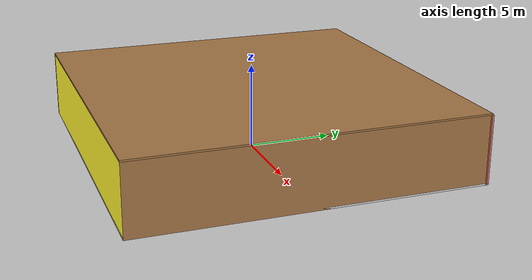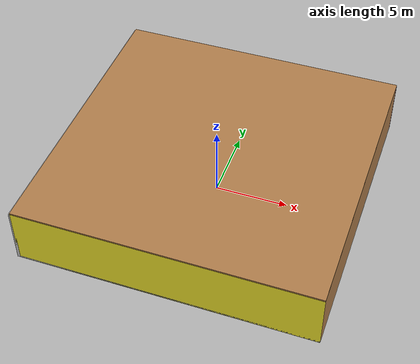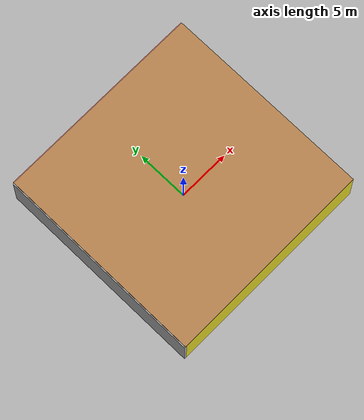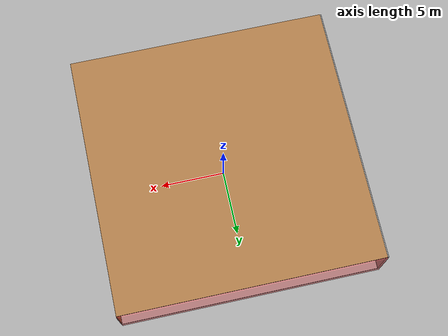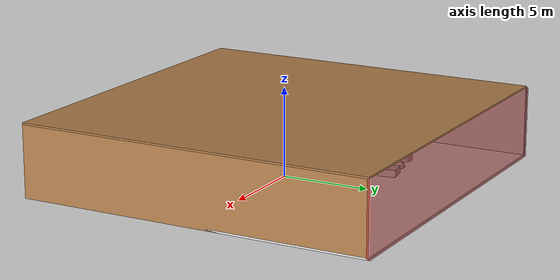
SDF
<sdf version="1.4">
 <world name="default">
  <physics type="ode">
   <max_step_size>0.001</max_step_size>
   <real_time_factor>1</real_time_factor>
   <real_time_update_rate>1000</real_time_update_rate>
   <gravity>0 0 -9.8</gravity>
  </physics>
  <scene><ambient>0.4 0.4 0.4 1</ambient><background>0.7 0.7 0.7 1</background><shadows>1</shadows></scene>
  <model name="Surrounding">
   <static>1</static>
   <link name="Ceiling">
    <collision name="Ceiling_Collision"><geometry><box><size>20 20 0.1</size></box></geometry></collision>
    <visual name="Ceiling_Visual">
     <geometry><box><size>20 20 0.1</size></box></geometry>
     <material>
      <script><uri>file://media/materials/scripts/gazebo.material</uri><name>Gazebo/WoodFloor</name></script>
     </material>
    </visual>
    <pose>0 0 4.05 0 0 0</pose>
   </link>
   <link name="Wall_South">
    <collision name="Wall_South_Collision">
     <geometry><box><size>20 0 4</size></box></geometry>
     <pose>0 0 2 0 -0 0</pose>
    </collision>
    <visual name="Wall_South_Visual">
     <pose>0 0 2 0 -0 0</pose>
     <geometry><box><size>20 0 4</size></box></geometry>
     <material>
      <script><uri>file://media/materials/scripts/gazebo.material</uri><name>Gazebo/Yellow</name></script>
     </material>
    </visual>
    <velocity_decay><linear>0</linear><angular>0</angular></velocity_decay>
    <pose>0 -10 0 0 -0 0</pose>
   </link>
   <link name="Wall_East">
    <collision name="Wall_21_Collision">
     <geometry><box><size>20 0 4</size></box></geometry>
     <pose>0 0 2 0 -0 0</pose>
    </collision>
    <visual name="Wall_21_Visual">
     <pose>0 0 2 0 -0 0</pose>
     <geometry><box><size>20 0 4</size></box></geometry>
     <material>
      <script><uri>file://media/materials/scripts/gazebo.material</uri><name>Gazebo/Wood</name></script>
     </material>
    </visual>
    <velocity_decay><linear>0</linear><angular>0</angular></velocity_decay>
    <pose>10 0 0 0 -0 1.5708</pose>
   </link>
   <link name="Wall_North">
    <collision name="Wall_22_Collision">
     <geometry><box><size>20 0.2 4</size></box></geometry>
     <pose>0 0 2 0 -0 0</pose>
    </collision>
    <visual name="Wall_22_Visual">
     <pose>0 0 2 0 -0 0</pose>
     <geometry><box><size>20 0.2 4</size></box></geometry>
     <material>
      <script><uri>file://media/materials/scripts/gazebo.material</uri><name>Gazebo/RedTransparent</name></script>
     </material>
    </visual>
    <velocity_decay><linear>0</linear><angular>0</angular></velocity_decay>
    <pose>0 10 0 0 -0 0</pose>
   </link>
   <link name="Wall_West">
    <collision name="Wall_23_Collision">
     <geometry><box><size>20 0.2 4</size></box></geometry>
     <pose>0 0 2 0 -0 0</pose>
    </collision>
    <visual name="Wall_23_Visual">
     <pose>0 0 2 0 -0 0</pose>
     <geometry><box><size>20 0.2 4</size></box></geometry>
     <material>
      <script><uri>file://media/materials/scripts/gazebo.material</uri><name>Gazebo/CloudySky</name></script>
     </material>
    </visual>
    <velocity_decay><linear>0</linear><angular>0</angular></velocity_decay>
    <pose>-10 0 0 0 0 -1.5708</pose>
   </link>
   <link name="Ground_link">
    <collision name="collision">
     <pose>0 0 .05 0 -0 0</pose>
     <geometry><box><size>20 20 0.1</size></box></geometry>
    </collision>
    <visual name="visual">
     <pose>0 0 .05 0 -0 0</pose>
     <geometry><box><size>20 20 0.1</size></box></geometry>
     <material>
      <script><uri>file://media/materials/scripts/gazebo.material</uri><name>Gazebo/White</name></script>
     </material>
    </visual>
   </link>
   <static>1</static>
  </model>
  <spherical_coordinates>
   <surface_model>EARTH_WGS84</surface_model>
   <latitude_deg>0</latitude_deg>
   <longitude_deg>0</longitude_deg>
   <elevation>0</elevation>
   <heading_deg>0</heading_deg>
  </spherical_coordinates>
  <light name="lightball_0" type="diffuse">
   <diffuse>0.8 0.8 0.8 1</diffuse>
   <specular>0.2 0.2 0.2 1</specular>
   <attenuation>
    <range>100</range>
    <constant>0.7</constant>
    <linear>0.01</linear>
    <quadratic>0.001</quadratic>
   </attenuation>
   <direction>-0.5 0.1 -0.9</direction>
   <pose>2.46309758658 2.43146193428 0.762642692834 0 0 0</pose>
  </light>
  <light name="lightball_1" type="diffuse">
   <diffuse>0.8 0.8 0.8 1</diffuse>
   <specular>0.2 0.2 0.2 1</specular>
   <attenuation>
    <range>100</range>
    <constant>0.7</constant>
    <linear>0.01</linear>
    <quadratic>0.001</quadratic>
   </attenuation>
   <direction>-0.5 0.1 -0.9</direction>
   <pose>-2.12339202029 7.17710336178 2.88404827961 0 0 0</pose>
  </light>
  <light name="lightball_2" type="diffuse">
   <diffuse>0.8 0.8 0.8 1</diffuse>
   <specular>0.2 0.2 0.2 1</specular>
   <attenuation>
    <range>100</range>
    <constant>0.7</constant>
    <linear>0.01</linear>
    <quadratic>0.001</quadratic>
   </attenuation>
   <direction>-0.5 0.1 -0.9</direction>
   <pose>8.30786198302 -7.45354838138 1.51583869218 0 0 0</pose>
  </light>
  <light name="lightball_3" type="diffuse">
   <diffuse>0.8 0.8 0.8 1</diffuse>
   <specular>0.2 0.2 0.2 1</specular>
   <attenuation>
    <range>100</range>
    <constant>0.7</constant>
    <linear>0.01</linear>
    <quadratic>0.001</quadratic>
   </attenuation>
   <direction>-0.5 0.1 -0.9</direction>
   <pose>-8.30625624698 -4.25897713934 0.808662537813 0 0 0</pose>
  </light>
  <light name="lightball_4" type="diffuse">
   <diffuse>0.8 0.8 0.8 1</diffuse>
   <specular>0.2 0.2 0.2 1</specular>
   <attenuation>
    <range>100</range>
    <constant>0.7</constant>
    <linear>0.01</linear>
    <quadratic>0.001</quadratic>
   </attenuation>
   <direction>-0.5 0.1 -0.9</direction>
   <pose>-3.95560047528 -0.171806319231 1.89953419769 0 0 0</pose>
  </light>
  <light name="lightball_5" type="diffuse">
   <diffuse>0.8 0.8 0.8 1</diffuse>
   <specular>0.2 0.2 0.2 1</specular>
   <attenuation>
    <range>100</range>
    <constant>0.7</constant>
    <linear>0.01</linear>
    <quadratic>0.001</quadratic>
   </attenuation>
   <direction>-0.5 0.1 -0.9</direction>
   <pose>5.51357619503 -6.59407340772 0.500741534392 0 0 0</pose>
  </light>
  <light name="lightball_6" type="diffuse">
   <diffuse>0.8 0.8 0.8 1</diffuse>
   <specular>0.2 0.2 0.2 1</specular>
   <attenuation>
    <range>100</range>
    <constant>0.7</constant>
    <linear>0.01</linear>
    <quadratic>0.001</quadratic>
   </attenuation>
   <direction>-0.5 0.1 -0.9</direction>
   <pose>5.40993229559 4.83387642714 1.88099149599 0 0 0</pose>
  </light>
  <light name="lightball_7" type="diffuse">
   <diffuse>0.8 0.8 0.8 1</diffuse>
   <specular>0.2 0.2 0.2 1</specular>
   <attenuation>
    <range>100</range>
    <constant>0.7</constant>
    <linear>0.01</linear>
    <quadratic>0.001</quadratic>
   </attenuation>
   <direction>-0.5 0.1 -0.9</direction>
   <pose>1.13688771058 -8.74587751553 2.84709034712 0 0 0</pose>
  </light>
  <light name="lightball_8" type="diffuse">
   <diffuse>0.8 0.8 0.8 1</diffuse>
   <specular>0.2 0.2 0.2 1</specular>
   <attenuation>
    <range>100</range>
    <constant>0.7</constant>
    <linear>0.01</linear>
    <quadratic>0.001</quadratic>
   </attenuation>
   <direction>-0.5 0.1 -0.9</direction>
   <pose>-8.23102574511 -5.19416793638 0.560306198384 0 0 0</pose>
  </light>
  <light name="lightball_9" type="diffuse">
   <diffuse>0.8 0.8 0.8 1</diffuse>
   <specular>0.2 0.2 0.2 1</specular>
   <attenuation>
    <range>100</range>
    <constant>0.7</constant>
    <linear>0.01</linear>
    <quadratic>0.001</quadratic>
   </attenuation>
   <direction>-0.5 0.1 -0.9</direction>
   <pose>-7.34480874841 4.54384392789 0.510016150924 0 0 0</pose>
  </light>
  <include><uri>model://cabinet</uri><pose>-6.6548742994 1.4880352133 0 0 0 2.80678379493</pose></include>
  <include>
   <uri>model://textured_shapes</uri>
   <pose>-4.28691152175 4.70091989228 0 0 0 1.74421886432</pose>
  </include>
  <include>
   <uri>model://construction_cone</uri>
   <pose>-0.924220491701 -3.99098565751 0 0 0 0.213520719458</pose>
  </include>
  <include>
   <uri>model://robocup_3Dsim_goal</uri>
   <pose>2.59810051412 -1.14968006734 0 0 0 2.97691462985</pose>
  </include>
 </world>
</sdf>

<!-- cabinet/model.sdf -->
<sdf version="1.5">
  <model name="cabinet">
    <static>true</static>
    <link name="cabinet_bottom_plate">
      <inertial>
        <pose>0 0 -1 0 0 0</pose>
        <inertia>
          <ixx>2.050000</ixx>
          <ixy>0</ixy>
          <ixz>0</ixz>
          <iyy>2.050000</iyy>
          <iyz>0</iyz>
          <izz>2.050000</izz>
        </inertia>
        <mass>25.000000</mass>
      </inertial>
      <collision name="cabinet_bottom_plate_geom">
        <pose>0 0 0.010000 0 0 0</pose>
        <geometry>
          <box>
            <size>0.450000 0.450000 0.020000</size>
          </box>
        </geometry>
      </collision>
      <visual name="cabinet_bottom_plate_geom_visual">
        <pose>0 0 0.010000 0 0 0</pose>
        <geometry>
          <box>
            <size>0.450000 0.450000 0.020000</size>
          </box>
        </geometry>
        <material>
          <script>
            <uri>model://media/materials/scripts/gazebo.material</uri>
            <name>Gazebo/Wood</name>
          </script>
        </material>
      </visual>
      <collision name="cabinet_bottom_plate_geom_cabinet_back_plate">
        <pose>0.235000 0 0.510000 0 0 0</pose>
        <geometry>
          <box>
            <size>0.020000 0.450000 1.020000</size>
          </box>
        </geometry>
      </collision>
      <visual name="cabinet_bottom_plate_geom_cabinet_back_plate_visual">
        <pose>0.235000 0 0.510000 0 0 0</pose>
        <geometry>
          <box>
            <size>0.020000 0.450000 1.020000</size>
          </box>
        </geometry>
        <material>
          <script>
            <uri>model://media/materials/scripts/gazebo.material</uri>
            <name>Gazebo/Wood</name>
          </script>
        </material>
      </visual>
      <collision name="cabinet_bottom_plate_geom_cabinet_left_plate">
        <pose>0 0.235000 0.510000 0 0 0</pose>
        <geometry>
          <box>
            <size>0.450000 0.020000 1.020000</size>
          </box>
        </geometry>
      </collision>
      <visual name="cabinet_bottom_plate_geom_cabinet_left_plate_visual">
        <pose>0 0.235000 0.510000 0 0 0</pose>
        <geometry>
          <box>
            <size>0.450000 0.020000 1.020000</size>
          </box>
        </geometry>
        <material>
          <script>
            <uri>model://media/materials/scripts/gazebo.material</uri>
            <name>Gazebo/Wood</name>
          </script>
        </material>
      </visual>
      <collision name="cabinet_bottom_plate_geom_cabinet_middle_plate">
        <pose>0 0 0.510000 0 0 0</pose>
        <geometry>
          <box>
            <size>0.450000 0.450000 0.020000</size>
          </box>
        </geometry>
      </collision>
      <visual name="cabinet_bottom_plate_geom_cabinet_middle_plate_visual">
        <pose>0 0 0.510000 0 0 0</pose>
        <geometry>
          <box>
            <size>0.450000 0.450000 0.020000</size>
          </box>
        </geometry>
        <material>
          <script>
            <uri>model://media/materials/scripts/gazebo.material</uri>
            <name>Gazebo/Wood</name>
          </script>
        </material>
      </visual>
      <collision name="cabinet_bottom_plate_geom_cabinet_right_plate">
        <pose>0 -0.235000 0.510000 0 0 0</pose>
        <geometry>
          <box>
            <size>0.450000 0.020000 1.020000</size>
          </box>
        </geometry>
      </collision>
      <visual name="cabinet_bottom_plate_geom_cabinet_right_plate_visual">
        <pose>0 -0.235000 0.510000 0 0 0</pose>
        <geometry>
          <box>
            <size>0.450000 0.020000 1.020000</size>
          </box>
        </geometry>
        <material>
          <script>
            <uri>model://media/materials/scripts/gazebo.material</uri>
            <name>Gazebo/Wood</name>
          </script>
        </material>
      </visual>
      <collision name="cabinet_bottom_plate_geom_cabinet_top_plate">
        <pose>0 0 1.010000 0 0 0</pose>
        <geometry>
          <box>
            <size>0.450000 0.450000 0.020000</size>
          </box>
        </geometry>
      </collision>
      <visual name="cabinet_bottom_plate_geom_cabinet_top_plate_visual">
        <pose>0 0 1.010000 0 0 0</pose>
        <geometry>
          <box>
            <size>0.450000 0.450000 0.020000</size>
          </box>
        </geometry>
        <material>
          <script>
            <uri>model://media/materials/scripts/gazebo.material</uri>
            <name>Gazebo/Wood</name>
          </script>
        </material>
      </visual>
    </link>
  </model>
</sdf>

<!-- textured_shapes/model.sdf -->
<sdf version="1.6">
  <model name="textured_shapes">
    <pose>0 0 0.5 0 0 0</pose>
    <link name="box">
      <pose>0 -1.5 0 0 0 0</pose>
      <collision name="collision">
        <geometry>
          <box>
            <size>1 1 1</size>
          </box>
        </geometry>
      </collision>
      <visual name="visual">
        <geometry>
          <box>
            <size>1 1 1</size>
          </box>
        </geometry>
        <material>
          <script>
            <uri>model://../model_source/models/textured_shapes/materials/scripts</uri>
            <uri>model://../model_source/models/textured_shapes/materials/textures</uri>
            <name>TexturedShape/Squares</name>
          </script>
        </material>
      </visual>
    </link>
    <link name="sphere">
      <collision name="collision">
        <geometry>
          <sphere>
            <radius>0.5</radius>
          </sphere>
        </geometry>
      </collision>
      <visual name="visual">
        <geometry>
          <sphere>
            <radius>0.5</radius>
          </sphere>
        </geometry>
        <material>
          <script>
            <uri>model://../model_source/models/textured_shapes/materials/scripts</uri>
            <uri>model://../model_source/models/textured_shapes/materials/textures</uri>
            <name>TexturedShape/Squares</name>
          </script>
        </material>
      </visual>
    </link>
    <link name="cylinder">
      <pose>0 1.5 0 0 0 0</pose>
      <collision name="collision">
        <geometry>
          <cylinder>
            <radius>0.5</radius>
            <length>1</length>
          </cylinder>
        </geometry>
      </collision>
      <visual name="visual">
        <geometry>
          <cylinder>
            <radius>0.5</radius>
            <length>1</length>
          </cylinder>
        </geometry>
        <material>
          <script>
            <uri>model://../model_source/models/textured_shapes/materials/scripts</uri>
            <uri>model://../model_source/models/textured_shapes/materials/textures</uri>
            <name>TexturedShape/Squares</name>
          </script>
        </material>
      </visual>
    </link>
  </model>
</sdf>

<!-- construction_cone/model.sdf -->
<sdf version="1.5">
  <model name="Construction Cone">
    <link name="link">
      <collision name="collision">
        <geometry>
          <mesh>
            <scale>10 10 10</scale>
            <uri>file://isr-testbed/construction_cone/meshes/construction_cone.dae</uri>
          </mesh>
        </geometry>
      </collision>
      <visual name="visual">
        <geometry>
          <mesh>
            <scale>10 10 10</scale>
            <uri>file://isr-testbed/construction_cone/meshes/construction_cone.dae</uri>
          </mesh>
        </geometry>
      </visual>
    </link>
  </model>
</sdf>

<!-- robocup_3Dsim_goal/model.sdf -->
<sdf version="1.5">
  <model name="robocup_3d_goal">
    <static>true</static>
    <link name="left_post">
      <pose>0 1.05 0.45 0 0 0</pose>
      <collision name="collision">
        <geometry>
          <cylinder>
            <radius>0.05</radius>
            <length>0.9</length>
          </cylinder>
        </geometry>
      </collision>
      <visual name="visual">
        <geometry>
          <cylinder>
            <radius>0.05</radius>
            <length>0.9</length>
          </cylinder>
        </geometry>
        <material>
          <script>
            <uri>file://media/materials/scripts/gazebo.material</uri>
            <name>Gazebo/ZincYellow</name>
          </script>
        </material>
      </visual>
    </link>
    <link name="left_support_horiz_lower">
      <pose>0.30 1.05 0.01 0 0 0</pose>
      <collision name="collision">
        <geometry>
          <box>
            <size>0.50 0.02 0.02</size>
          </box>
        </geometry>
      </collision>
      <visual name="visual">
        <geometry>
          <box>
            <size>0.50 0.02 0.02</size>
          </box>
        </geometry>
        <material>
          <script>
            <uri>file://media/materials/scripts/gazebo.material</uri>
            <name>Gazebo/White</name>
          </script>
        </material>
      </visual>
    </link>
    <link name="left_support_horiz_upper">
      <pose>0.30 1.05 0.79 0 0 0</pose>
      <collision name="collision">
        <geometry>
          <box>
            <size>0.50 0.02 0.02</size>
          </box>
        </geometry>
      </collision>
      <visual name="visual">
        <geometry>
          <box>
            <size>0.50 0.02 0.02</size>
          </box>
        </geometry>
        <material>
          <script>
            <uri>file://media/materials/scripts/gazebo.material</uri>
            <name>Gazebo/White</name>
          </script>
        </material>
      </visual>
    </link>
    <link name="left_support_vertical">
      <pose>0.56 1.05 0.4 0 1.5708 0</pose>
      <collision name="collision">
        <geometry>
          <box>
            <size>0.80 0.02 0.02</size>
          </box>
        </geometry>
      </collision>
      <visual name="visual">
        <geometry>
          <box>
            <size>0.80 0.02 0.02</size>
          </box>
        </geometry>
        <material>
          <script>
            <uri>file://media/materials/scripts/gazebo.material</uri>
            <name>Gazebo/White</name>
          </script>
        </material>
      </visual>
    </link>
    <link name="right_support_horiz_lower">
      <pose>0.30 -1.05 0.01 0 0 0</pose>
      <collision name="collision">
        <geometry>
          <box>
            <size>0.50 0.02 0.02</size>
          </box>
        </geometry>
      </collision>
      <visual name="visual">
        <geometry>
          <box>
            <size>0.50 0.02 0.02</size>
          </box>
        </geometry>
        <material>
          <script>
            <uri>file://media/materials/scripts/gazebo.material</uri>
            <name>Gazebo/White</name>
          </script>
        </material>
      </visual>
    </link>
    <link name="right_support_horiz_upper">
      <pose>0.30 -1.05 0.79 0 0 0</pose>
      <collision name="collision">
        <geometry>
          <box>
            <size>0.50 0.02 0.02</size>
          </box>
        </geometry>
      </collision>
      <visual name="visual">
        <geometry>
          <box>
            <size>0.50 0.02 0.02</size>
          </box>
        </geometry>
        <material>
          <script>
            <uri>file://media/materials/scripts/gazebo.material</uri>
            <name>Gazebo/White</name>
          </script>
        </material>
      </visual>
    </link>
    <link name="right_support_vertical">
      <pose>0.56 -1.05 0.4 0 1.5708 0</pose>
      <collision name="collision">
        <geometry>
          <box>
            <size>0.80 0.02 0.02</size>
          </box>
        </geometry>
      </collision>
      <visual name="visual">
        <geometry>
          <box>
            <size>0.80 0.02 0.02</size>
          </box>
        </geometry>
        <material>
          <script>
            <uri>file://media/materials/scripts/gazebo.material</uri>
            <name>Gazebo/White</name>
          </script>
        </material>
      </visual>
    </link>
    <link name="center_support_horiz_lower">
      <pose>0.56 0 0.01 0 1.5708 0</pose>
      <collision name="collision">
        <geometry>
          <box>
            <size>0.02 2.08 0.02</size>
          </box>
        </geometry>
      </collision>
      <visual name="visual">
        <geometry>
          <box>
            <size>0.02 2.08 0.02</size>
          </box>
        </geometry>
        <material>
          <script>
            <uri>file://media/materials/scripts/gazebo.material</uri>
            <name>Gazebo/White</name>
          </script>
        </material>
      </visual>
    </link>
    <link name="center_support_horiz_upper">
      <pose>0.56 0 0.79 0 1.5708 0</pose>
      <collision name="collision">
        <geometry>
          <box>
            <size>0.02 2.08 0.02</size>
          </box>
        </geometry>
      </collision>
      <visual name="visual">
        <geometry>
          <box>
            <size>0.02 2.08 0.02</size>
          </box>
        </geometry>
        <material>
          <script>
            <uri>file://media/materials/scripts/gazebo.material</uri>
            <name>Gazebo/White</name>
          </script>
        </material>
      </visual>
    </link>
    <link name="right_post">
      <pose>0 -1.05 0.45 0 0 0</pose>
      <collision name="collision">
        <geometry>
          <cylinder>
            <radius>0.05</radius>
            <length>0.9</length>
          </cylinder>
        </geometry>
      </collision>
      <visual name="visual">
        <geometry>
          <cylinder>
            <radius>0.05</radius>
            <length>0.9</length>
          </cylinder>
        </geometry>
        <material>
          <script>
            <uri>file://media/materials/scripts/gazebo.material</uri>
            <name>Gazebo/ZincYellow</name>
          </script>
        </material>
      </visual>
    </link>
    <link name="crossbar">
      <pose>0 0 0.85 1.57 1.57 0</pose>
      <collision name="collision">
        <geometry>
          <cylinder>
            <radius>0.05</radius>
            <length>2.0</length>
          </cylinder>
        </geometry>
      </collision>
      <visual name="visual">
        <geometry>
          <cylinder>
            <radius>0.05</radius>
            <length>2.0</length>
          </cylinder>
        </geometry>
        <material>
          <script>
            <uri>file://media/materials/scripts/gazebo.material</uri>
            <name>Gazebo/ZincYellow</name>
          </script>
        </material>
      </visual>
    </link>
    <link name="center_net">
      <pose>0.56 0 0.40 0 0 0</pose>
      <collision name="collision">
        <geometry>
          <box>
            <size>0.01 2.1 0.80</size>
          </box>
        </geometry>
      </collision>
      <visual name="visual">
        <geometry>
          <box>
            <size>0.01 2.1 0.80</size>
          </box>
        </geometry>
        <material>
          <script>
            <uri>model://../model_source/models/robocup09_spl_field/materials/scripts/</uri>
            <uri>model://../model_source/models/robocup09_spl_field/materials/textures/</uri>
            <name>RoboCup/Net</name>
          </script>
        </material>
      </visual>
    </link>
    <link name="left_net">
      <pose>0.30 1.05 0.40 0 0 0</pose>
      <collision name="collision">
        <geometry>
          <box>
            <size>0.50 0.01 0.76</size>
          </box>
        </geometry>
      </collision>
      <visual name="visual">
        <geometry>
          <box>
            <size>0.50 0.01 0.76</size>
          </box>
        </geometry>
        <material>
          <script>
            <uri>model://../model_source/models/robocup09_spl_field/materials/scripts/</uri>
            <uri>model://../model_source/models/robocup09_spl_field/materials/textures/</uri>
            <name>RoboCup/Net</name>
          </script>
        </material>
      </visual>
    </link>
    <link name="right_net">
      <pose>0.30 -1.05 0.40 0 0 0</pose>
      <collision name="collision">
        <geometry>
          <box>
            <size>0.50 0.01 0.76</size>
          </box>
        </geometry>
      </collision>
      <visual name="visual">
        <geometry>
          <box>
            <size>0.50 0.01 0.76</size>
          </box>
        </geometry>
        <material>
          <script>
            <uri>model://../model_source/models/robocup09_spl_field/materials/scripts/</uri>
            <uri>model://../model_source/models/robocup09_spl_field/materials/textures/</uri>
            <name>RoboCup/Net</name>
          </script>
        </material>
      </visual>
    </link>
  </model>
</sdf>
